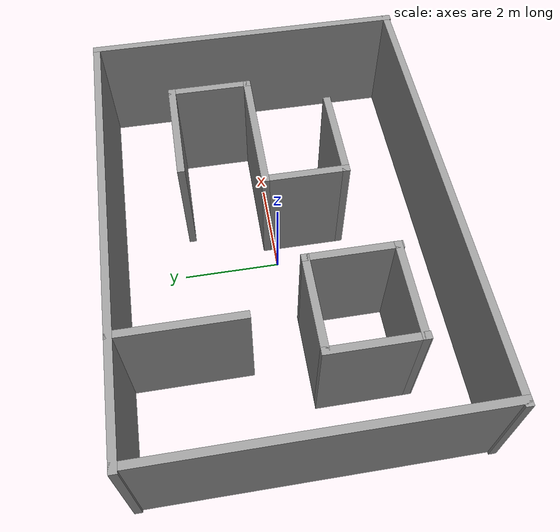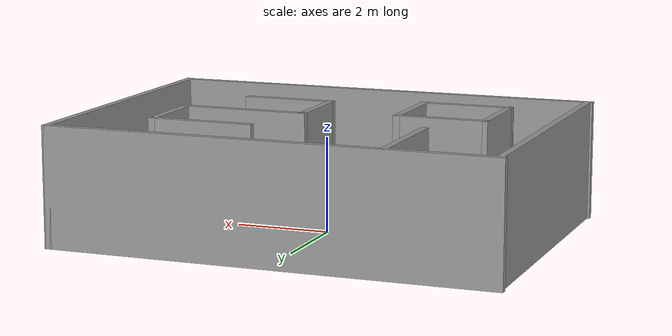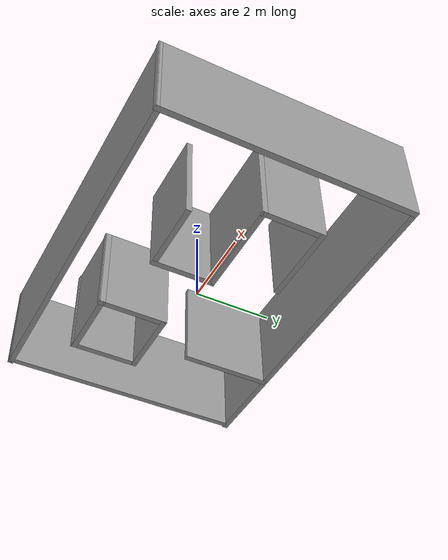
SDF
<?xml version='1.0'?>
<sdf version='1.6'>
  <model name='my_building'>
    <link name='Wall_0'>
      <pose frame=''>-0.0133 3.30088 0 0 -0 0</pose>
      <self_collide>0</self_collide>
      <enable_wind>0</enable_wind>
      <kinematic>0</kinematic>
      <visual name='Wall_0_Visual'>
        <pose frame=''>0 0 1.25 0 -0 0</pose>
        <geometry>
          <box>
            <size>9.43601 0.15 2.5</size>
          </box>
        </geometry>
        <material>
          <script>
            <uri>file://media/materials/scripts/gazebo.material</uri>
            <name>Gazebo/Grey</name>
          </script>
          <ambient>1 1 1 1</ambient>
          <shader type='pixel'/>
        </material>
        <meta>
          <layer>0</layer>
        </meta>
        <transparency>0</transparency>
        <cast_shadows>1</cast_shadows>
      </visual>
      <collision name='Wall_0_Collision'>
        <laser_retro>0</laser_retro>
        <max_contacts>10</max_contacts>
        <pose frame=''>0 0 1.25 0 -0 0</pose>
        <geometry>
          <box>
            <size>9.43601 0.15 2.5</size>
          </box>
        </geometry>
        <surface>
          <friction>
            <ode>
              <mu>1</mu>
              <mu2>1</mu2>
              <fdir1>0 0 0</fdir1>
              <slip1>0</slip1>
              <slip2>0</slip2>
            </ode>
            <torsional>
              <coefficient>1</coefficient>
              <patch_radius>0</patch_radius>
              <surface_radius>0</surface_radius>
              <use_patch_radius>1</use_patch_radius>
              <ode>
                <slip>0</slip>
              </ode>
            </torsional>
          </friction>
          <bounce>
            <restitution_coefficient>0</restitution_coefficient>
            <threshold>1e+06</threshold>
          </bounce>
          <contact>
            <collide_without_contact>0</collide_without_contact>
            <collide_without_contact_bitmask>1</collide_without_contact_bitmask>
            <collide_bitmask>1</collide_bitmask>
            <ode>
              <soft_cfm>0</soft_cfm>
              <soft_erp>0.2</soft_erp>
              <kp>1e+13</kp>
              <kd>1</kd>
              <max_vel>0.01</max_vel>
              <min_depth>0</min_depth>
            </ode>
            <bullet>
              <split_impulse>1</split_impulse>
              <split_impulse_penetration_threshold>-0.01</split_impulse_penetration_threshold>
              <soft_cfm>0</soft_cfm>
              <soft_erp>0.2</soft_erp>
              <kp>1e+13</kp>
              <kd>1</kd>
            </bullet>
          </contact>
        </surface>
      </collision>
    </link>
    <link name='Wall_1'>
      <pose frame=''>4.65631 9.3e-05 0 0 0 -1.5708</pose>
      <self_collide>0</self_collide>
      <enable_wind>0</enable_wind>
      <kinematic>0</kinematic>
      <visual name='Wall_1_Visual'>
        <pose frame=''>0 0 1.25 0 -0 0</pose>
        <geometry>
          <box>
            <size>6.75157 0.15 2.5</size>
          </box>
        </geometry>
        <material>
          <script>
            <uri>file://media/materials/scripts/gazebo.material</uri>
            <name>Gazebo/Grey</name>
          </script>
          <ambient>1 1 1 1</ambient>
          <shader type='pixel'/>
        </material>
        <meta>
          <layer>0</layer>
        </meta>
        <transparency>0</transparency>
        <cast_shadows>1</cast_shadows>
      </visual>
      <collision name='Wall_1_Collision'>
        <laser_retro>0</laser_retro>
        <max_contacts>10</max_contacts>
        <pose frame=''>0 0 1.25 0 -0 0</pose>
        <geometry>
          <box>
            <size>6.75157 0.15 2.5</size>
          </box>
        </geometry>
        <surface>
          <friction>
            <ode>
              <mu>1</mu>
              <mu2>1</mu2>
              <fdir1>0 0 0</fdir1>
              <slip1>0</slip1>
              <slip2>0</slip2>
            </ode>
            <torsional>
              <coefficient>1</coefficient>
              <patch_radius>0</patch_radius>
              <surface_radius>0</surface_radius>
              <use_patch_radius>1</use_patch_radius>
              <ode>
                <slip>0</slip>
              </ode>
            </torsional>
          </friction>
          <bounce>
            <restitution_coefficient>0</restitution_coefficient>
            <threshold>1e+06</threshold>
          </bounce>
          <contact>
            <collide_without_contact>0</collide_without_contact>
            <collide_without_contact_bitmask>1</collide_without_contact_bitmask>
            <collide_bitmask>1</collide_bitmask>
            <ode>
              <soft_cfm>0</soft_cfm>
              <soft_erp>0.2</soft_erp>
              <kp>1e+13</kp>
              <kd>1</kd>
              <max_vel>0.01</max_vel>
              <min_depth>0</min_depth>
            </ode>
            <bullet>
              <split_impulse>1</split_impulse>
              <split_impulse_penetration_threshold>-0.01</split_impulse_penetration_threshold>
              <soft_cfm>0</soft_cfm>
              <soft_erp>0.2</soft_erp>
              <kp>1e+13</kp>
              <kd>1</kd>
            </bullet>
          </contact>
        </surface>
      </collision>
    </link>
    <link name='Wall_10'>
      <pose frame=''>3.08812 0.963122 0 0 0 -1.5708</pose>
      <self_collide>0</self_collide>
      <enable_wind>0</enable_wind>
      <kinematic>0</kinematic>
      <visual name='Wall_10_Visual'>
        <pose frame=''>0 0 1.25 0 -0 0</pose>
        <geometry>
          <box>
            <size>1.75 0.15 2.5</size>
          </box>
        </geometry>
        <material>
          <script>
            <uri>file://media/materials/scripts/gazebo.material</uri>
            <name>Gazebo/Grey</name>
          </script>
          <ambient>1 1 1 1</ambient>
          <shader type='pixel'/>
        </material>
        <meta>
          <layer>0</layer>
        </meta>
        <transparency>0</transparency>
        <cast_shadows>1</cast_shadows>
      </visual>
      <collision name='Wall_10_Collision'>
        <laser_retro>0</laser_retro>
        <max_contacts>10</max_contacts>
        <pose frame=''>0 0 1.25 0 -0 0</pose>
        <geometry>
          <box>
            <size>1.75 0.15 2.5</size>
          </box>
        </geometry>
        <surface>
          <friction>
            <ode>
              <mu>1</mu>
              <mu2>1</mu2>
              <fdir1>0 0 0</fdir1>
              <slip1>0</slip1>
              <slip2>0</slip2>
            </ode>
            <torsional>
              <coefficient>1</coefficient>
              <patch_radius>0</patch_radius>
              <surface_radius>0</surface_radius>
              <use_patch_radius>1</use_patch_radius>
              <ode>
                <slip>0</slip>
              </ode>
            </torsional>
          </friction>
          <bounce>
            <restitution_coefficient>0</restitution_coefficient>
            <threshold>1e+06</threshold>
          </bounce>
          <contact>
            <collide_without_contact>0</collide_without_contact>
            <collide_without_contact_bitmask>1</collide_without_contact_bitmask>
            <collide_bitmask>1</collide_bitmask>
            <ode>
              <soft_cfm>0</soft_cfm>
              <soft_erp>0.2</soft_erp>
              <kp>1e+13</kp>
              <kd>1</kd>
              <max_vel>0.01</max_vel>
              <min_depth>0</min_depth>
            </ode>
            <bullet>
              <split_impulse>1</split_impulse>
              <split_impulse_penetration_threshold>-0.01</split_impulse_penetration_threshold>
              <soft_cfm>0</soft_cfm>
              <soft_erp>0.2</soft_erp>
              <kp>1e+13</kp>
              <kd>1</kd>
            </bullet>
          </contact>
        </surface>
      </collision>
    </link>
    <link name='Wall_11'>
      <pose frame=''>1.78812 0.163122 0 0 -0 3.14159</pose>
      <self_collide>0</self_collide>
      <enable_wind>0</enable_wind>
      <kinematic>0</kinematic>
      <visual name='Wall_11_Visual'>
        <pose frame=''>0 0 1.25 0 -0 0</pose>
        <geometry>
          <box>
            <size>2.75 0.15 2.5</size>
          </box>
        </geometry>
        <material>
          <script>
            <uri>file://media/materials/scripts/gazebo.material</uri>
            <name>Gazebo/Grey</name>
          </script>
          <ambient>1 1 1 1</ambient>
          <shader type='pixel'/>
        </material>
        <meta>
          <layer>0</layer>
        </meta>
        <transparency>0</transparency>
        <cast_shadows>1</cast_shadows>
      </visual>
      <collision name='Wall_11_Collision'>
        <laser_retro>0</laser_retro>
        <max_contacts>10</max_contacts>
        <pose frame=''>0 0 1.25 0 -0 0</pose>
        <geometry>
          <box>
            <size>2.75 0.15 2.5</size>
          </box>
        </geometry>
        <surface>
          <friction>
            <ode>
              <mu>1</mu>
              <mu2>1</mu2>
              <fdir1>0 0 0</fdir1>
              <slip1>0</slip1>
              <slip2>0</slip2>
            </ode>
            <torsional>
              <coefficient>1</coefficient>
              <patch_radius>0</patch_radius>
              <surface_radius>0</surface_radius>
              <use_patch_radius>1</use_patch_radius>
              <ode>
                <slip>0</slip>
              </ode>
            </torsional>
          </friction>
          <bounce>
            <restitution_coefficient>0</restitution_coefficient>
            <threshold>1e+06</threshold>
          </bounce>
          <contact>
            <collide_without_contact>0</collide_without_contact>
            <collide_without_contact_bitmask>1</collide_without_contact_bitmask>
            <collide_bitmask>1</collide_bitmask>
            <ode>
              <soft_cfm>0</soft_cfm>
              <soft_erp>0.2</soft_erp>
              <kp>1e+13</kp>
              <kd>1</kd>
              <max_vel>0.01</max_vel>
              <min_depth>0</min_depth>
            </ode>
            <bullet>
              <split_impulse>1</split_impulse>
              <split_impulse_penetration_threshold>-0.01</split_impulse_penetration_threshold>
              <soft_cfm>0</soft_cfm>
              <soft_erp>0.2</soft_erp>
              <kp>1e+13</kp>
              <kd>1</kd>
            </bullet>
          </contact>
        </surface>
      </collision>
    </link>
    <link name='Wall_12'>
      <pose frame=''>0.488124 -0.636878 0 0 0 -1.5708</pose>
      <self_collide>0</self_collide>
      <enable_wind>0</enable_wind>
      <kinematic>0</kinematic>
      <visual name='Wall_12_Visual'>
        <pose frame=''>0 0 1.25 0 -0 0</pose>
        <geometry>
          <box>
            <size>1.75 0.15 2.5</size>
          </box>
        </geometry>
        <material>
          <script>
            <uri>file://media/materials/scripts/gazebo.material</uri>
            <name>Gazebo/Grey</name>
          </script>
          <ambient>1 1 1 1</ambient>
          <shader type='pixel'/>
        </material>
        <meta>
          <layer>0</layer>
        </meta>
        <transparency>0</transparency>
        <cast_shadows>1</cast_shadows>
      </visual>
      <collision name='Wall_12_Collision'>
        <laser_retro>0</laser_retro>
        <max_contacts>10</max_contacts>
        <pose frame=''>0 0 1.25 0 -0 0</pose>
        <geometry>
          <box>
            <size>1.75 0.15 2.5</size>
          </box>
        </geometry>
        <surface>
          <friction>
            <ode>
              <mu>1</mu>
              <mu2>1</mu2>
              <fdir1>0 0 0</fdir1>
              <slip1>0</slip1>
              <slip2>0</slip2>
            </ode>
            <torsional>
              <coefficient>1</coefficient>
              <patch_radius>0</patch_radius>
              <surface_radius>0</surface_radius>
              <use_patch_radius>1</use_patch_radius>
              <ode>
                <slip>0</slip>
              </ode>
            </torsional>
          </friction>
          <bounce>
            <restitution_coefficient>0</restitution_coefficient>
            <threshold>1e+06</threshold>
          </bounce>
          <contact>
            <collide_without_contact>0</collide_without_contact>
            <collide_without_contact_bitmask>1</collide_without_contact_bitmask>
            <collide_bitmask>1</collide_bitmask>
            <ode>
              <soft_cfm>0</soft_cfm>
              <soft_erp>0.2</soft_erp>
              <kp>1e+13</kp>
              <kd>1</kd>
              <max_vel>0.01</max_vel>
              <min_depth>0</min_depth>
            </ode>
            <bullet>
              <split_impulse>1</split_impulse>
              <split_impulse_penetration_threshold>-0.01</split_impulse_penetration_threshold>
              <soft_cfm>0</soft_cfm>
              <soft_erp>0.2</soft_erp>
              <kp>1e+13</kp>
              <kd>1</kd>
            </bullet>
          </contact>
        </surface>
      </collision>
    </link>
    <link name='Wall_13'>
      <pose frame=''>1.41312 -1.43688 0 0 -0 0</pose>
      <self_collide>0</self_collide>
      <enable_wind>0</enable_wind>
      <kinematic>0</kinematic>
      <visual name='Wall_13_Visual'>
        <pose frame=''>0 0 1.25 0 -0 0</pose>
        <geometry>
          <box>
            <size>2 0.15 2.5</size>
          </box>
        </geometry>
        <material>
          <script>
            <uri>file://media/materials/scripts/gazebo.material</uri>
            <name>Gazebo/Grey</name>
          </script>
          <ambient>1 1 1 1</ambient>
          <shader type='pixel'/>
        </material>
        <meta>
          <layer>0</layer>
        </meta>
        <transparency>0</transparency>
        <cast_shadows>1</cast_shadows>
      </visual>
      <collision name='Wall_13_Collision'>
        <laser_retro>0</laser_retro>
        <max_contacts>10</max_contacts>
        <pose frame=''>0 0 1.25 0 -0 0</pose>
        <geometry>
          <box>
            <size>2 0.15 2.5</size>
          </box>
        </geometry>
        <surface>
          <friction>
            <ode>
              <mu>1</mu>
              <mu2>1</mu2>
              <fdir1>0 0 0</fdir1>
              <slip1>0</slip1>
              <slip2>0</slip2>
            </ode>
            <torsional>
              <coefficient>1</coefficient>
              <patch_radius>0</patch_radius>
              <surface_radius>0</surface_radius>
              <use_patch_radius>1</use_patch_radius>
              <ode>
                <slip>0</slip>
              </ode>
            </torsional>
          </friction>
          <bounce>
            <restitution_coefficient>0</restitution_coefficient>
            <threshold>1e+06</threshold>
          </bounce>
          <contact>
            <collide_without_contact>0</collide_without_contact>
            <collide_without_contact_bitmask>1</collide_without_contact_bitmask>
            <collide_bitmask>1</collide_bitmask>
            <ode>
              <soft_cfm>0</soft_cfm>
              <soft_erp>0.2</soft_erp>
              <kp>1e+13</kp>
              <kd>1</kd>
              <max_vel>0.01</max_vel>
              <min_depth>0</min_depth>
            </ode>
            <bullet>
              <split_impulse>1</split_impulse>
              <split_impulse_penetration_threshold>-0.01</split_impulse_penetration_threshold>
              <soft_cfm>0</soft_cfm>
              <soft_erp>0.2</soft_erp>
              <kp>1e+13</kp>
              <kd>1</kd>
            </bullet>
          </contact>
        </surface>
      </collision>
    </link>
    <link name='Wall_15'>
      <pose frame=''>-2.33498 -0.272372 0 0 -0 0</pose>
      <self_collide>0</self_collide>
      <enable_wind>0</enable_wind>
      <kinematic>0</kinematic>
      <visual name='Wall_15_Visual'>
        <pose frame=''>0 0 1.25 0 -0 0</pose>
        <geometry>
          <box>
            <size>2 0.15 2.5</size>
          </box>
        </geometry>
        <material>
          <script>
            <uri>file://media/materials/scripts/gazebo.material</uri>
            <name>Gazebo/Grey</name>
          </script>
          <ambient>1 1 1 1</ambient>
          <shader type='pixel'/>
        </material>
        <meta>
          <layer>0</layer>
        </meta>
        <transparency>0</transparency>
        <cast_shadows>1</cast_shadows>
      </visual>
      <collision name='Wall_15_Collision'>
        <laser_retro>0</laser_retro>
        <max_contacts>10</max_contacts>
        <pose frame=''>0 0 1.25 0 -0 0</pose>
        <geometry>
          <box>
            <size>2 0.15 2.5</size>
          </box>
        </geometry>
        <surface>
          <friction>
            <ode>
              <mu>1</mu>
              <mu2>1</mu2>
              <fdir1>0 0 0</fdir1>
              <slip1>0</slip1>
              <slip2>0</slip2>
            </ode>
            <torsional>
              <coefficient>1</coefficient>
              <patch_radius>0</patch_radius>
              <surface_radius>0</surface_radius>
              <use_patch_radius>1</use_patch_radius>
              <ode>
                <slip>0</slip>
              </ode>
            </torsional>
          </friction>
          <bounce>
            <restitution_coefficient>0</restitution_coefficient>
            <threshold>1e+06</threshold>
          </bounce>
          <contact>
            <collide_without_contact>0</collide_without_contact>
            <collide_without_contact_bitmask>1</collide_without_contact_bitmask>
            <collide_bitmask>1</collide_bitmask>
            <ode>
              <soft_cfm>0</soft_cfm>
              <soft_erp>0.2</soft_erp>
              <kp>1e+13</kp>
              <kd>1</kd>
              <max_vel>0.01</max_vel>
              <min_depth>0</min_depth>
            </ode>
            <bullet>
              <split_impulse>1</split_impulse>
              <split_impulse_penetration_threshold>-0.01</split_impulse_penetration_threshold>
              <soft_cfm>0</soft_cfm>
              <soft_erp>0.2</soft_erp>
              <kp>1e+13</kp>
              <kd>1</kd>
            </bullet>
          </contact>
        </surface>
      </collision>
    </link>
    <link name='Wall_16'>
      <pose frame=''>-1.40998 -1.15111 0 0 0 -1.5708</pose>
      <self_collide>0</self_collide>
      <enable_wind>0</enable_wind>
      <kinematic>0</kinematic>
      <visual name='Wall_16_Visual'>
        <pose frame=''>0 0 1.25 0 -0 0</pose>
        <geometry>
          <box>
            <size>1.90748 0.15 2.5</size>
          </box>
        </geometry>
        <material>
          <script>
            <uri>file://media/materials/scripts/gazebo.material</uri>
            <name>Gazebo/Grey</name>
          </script>
          <ambient>1 1 1 1</ambient>
          <shader type='pixel'/>
        </material>
        <meta>
          <layer>0</layer>
        </meta>
        <transparency>0</transparency>
        <cast_shadows>1</cast_shadows>
      </visual>
      <collision name='Wall_16_Collision'>
        <laser_retro>0</laser_retro>
        <max_contacts>10</max_contacts>
        <pose frame=''>0 0 1.25 0 -0 0</pose>
        <geometry>
          <box>
            <size>1.90748 0.15 2.5</size>
          </box>
        </geometry>
        <surface>
          <friction>
            <ode>
              <mu>1</mu>
              <mu2>1</mu2>
              <fdir1>0 0 0</fdir1>
              <slip1>0</slip1>
              <slip2>0</slip2>
            </ode>
            <torsional>
              <coefficient>1</coefficient>
              <patch_radius>0</patch_radius>
              <surface_radius>0</surface_radius>
              <use_patch_radius>1</use_patch_radius>
              <ode>
                <slip>0</slip>
              </ode>
            </torsional>
          </friction>
          <bounce>
            <restitution_coefficient>0</restitution_coefficient>
            <threshold>1e+06</threshold>
          </bounce>
          <contact>
            <collide_without_contact>0</collide_without_contact>
            <collide_without_contact_bitmask>1</collide_without_contact_bitmask>
            <collide_bitmask>1</collide_bitmask>
            <ode>
              <soft_cfm>0</soft_cfm>
              <soft_erp>0.2</soft_erp>
              <kp>1e+13</kp>
              <kd>1</kd>
              <max_vel>0.01</max_vel>
              <min_depth>0</min_depth>
            </ode>
            <bullet>
              <split_impulse>1</split_impulse>
              <split_impulse_penetration_threshold>-0.01</split_impulse_penetration_threshold>
              <soft_cfm>0</soft_cfm>
              <soft_erp>0.2</soft_erp>
              <kp>1e+13</kp>
              <kd>1</kd>
            </bullet>
          </contact>
        </surface>
      </collision>
    </link>
    <link name='Wall_17'>
      <pose frame=''>-2.33498 -2.00672 0 0 -0 3.14159</pose>
      <self_collide>0</self_collide>
      <enable_wind>0</enable_wind>
      <kinematic>0</kinematic>
      <visual name='Wall_17_Visual'>
        <pose frame=''>0 0 1.25 0 -0 0</pose>
        <geometry>
          <box>
            <size>2 0.15 2.5</size>
          </box>
        </geometry>
        <material>
          <script>
            <uri>file://media/materials/scripts/gazebo.material</uri>
            <name>Gazebo/Grey</name>
          </script>
          <ambient>1 1 1 1</ambient>
          <shader type='pixel'/>
        </material>
        <meta>
          <layer>0</layer>
        </meta>
        <transparency>0</transparency>
        <cast_shadows>1</cast_shadows>
      </visual>
      <collision name='Wall_17_Collision'>
        <laser_retro>0</laser_retro>
        <max_contacts>10</max_contacts>
        <pose frame=''>0 0 1.25 0 -0 0</pose>
        <geometry>
          <box>
            <size>2 0.15 2.5</size>
          </box>
        </geometry>
        <surface>
          <friction>
            <ode>
              <mu>1</mu>
              <mu2>1</mu2>
              <fdir1>0 0 0</fdir1>
              <slip1>0</slip1>
              <slip2>0</slip2>
            </ode>
            <torsional>
              <coefficient>1</coefficient>
              <patch_radius>0</patch_radius>
              <surface_radius>0</surface_radius>
              <use_patch_radius>1</use_patch_radius>
              <ode>
                <slip>0</slip>
              </ode>
            </torsional>
          </friction>
          <bounce>
            <restitution_coefficient>0</restitution_coefficient>
            <threshold>1e+06</threshold>
          </bounce>
          <contact>
            <collide_without_contact>0</collide_without_contact>
            <collide_without_contact_bitmask>1</collide_without_contact_bitmask>
            <collide_bitmask>1</collide_bitmask>
            <ode>
              <soft_cfm>0</soft_cfm>
              <soft_erp>0.2</soft_erp>
              <kp>1e+13</kp>
              <kd>1</kd>
              <max_vel>0.01</max_vel>
              <min_depth>0</min_depth>
            </ode>
            <bullet>
              <split_impulse>1</split_impulse>
              <split_impulse_penetration_threshold>-0.01</split_impulse_penetration_threshold>
              <soft_cfm>0</soft_cfm>
              <soft_erp>0.2</soft_erp>
              <kp>1e+13</kp>
              <kd>1</kd>
            </bullet>
          </contact>
        </surface>
      </collision>
    </link>
    <link name='Wall_18'>
      <pose frame=''>-3.25998 -1.15111 0 0 -0 1.5708</pose>
      <self_collide>0</self_collide>
      <enable_wind>0</enable_wind>
      <kinematic>0</kinematic>
      <visual name='Wall_18_Visual'>
        <pose frame=''>0 0 1.25 0 -0 0</pose>
        <geometry>
          <box>
            <size>1.90748 0.15 2.5</size>
          </box>
        </geometry>
        <material>
          <script>
            <uri>file://media/materials/scripts/gazebo.material</uri>
            <name>Gazebo/Grey</name>
          </script>
          <ambient>1 1 1 1</ambient>
          <shader type='pixel'/>
        </material>
        <meta>
          <layer>0</layer>
        </meta>
        <transparency>0</transparency>
        <cast_shadows>1</cast_shadows>
      </visual>
      <collision name='Wall_18_Collision'>
        <laser_retro>0</laser_retro>
        <max_contacts>10</max_contacts>
        <pose frame=''>0 0 1.25 0 -0 0</pose>
        <geometry>
          <box>
            <size>1.90748 0.15 2.5</size>
          </box>
        </geometry>
        <surface>
          <friction>
            <ode>
              <mu>1</mu>
              <mu2>1</mu2>
              <fdir1>0 0 0</fdir1>
              <slip1>0</slip1>
              <slip2>0</slip2>
            </ode>
            <torsional>
              <coefficient>1</coefficient>
              <patch_radius>0</patch_radius>
              <surface_radius>0</surface_radius>
              <use_patch_radius>1</use_patch_radius>
              <ode>
                <slip>0</slip>
              </ode>
            </torsional>
          </friction>
          <bounce>
            <restitution_coefficient>0</restitution_coefficient>
            <threshold>1e+06</threshold>
          </bounce>
          <contact>
            <collide_without_contact>0</collide_without_contact>
            <collide_without_contact_bitmask>1</collide_without_contact_bitmask>
            <collide_bitmask>1</collide_bitmask>
            <ode>
              <soft_cfm>0</soft_cfm>
              <soft_erp>0.2</soft_erp>
              <kp>1e+13</kp>
              <kd>1</kd>
              <max_vel>0.01</max_vel>
              <min_depth>0</min_depth>
            </ode>
            <bullet>
              <split_impulse>1</split_impulse>
              <split_impulse_penetration_threshold>-0.01</split_impulse_penetration_threshold>
              <soft_cfm>0</soft_cfm>
              <soft_erp>0.2</soft_erp>
              <kp>1e+13</kp>
              <kd>1</kd>
            </bullet>
          </contact>
        </surface>
      </collision>
    </link>
    <link name='Wall_2'>
      <pose frame=''>0 -3.28913 0 0 0 -3.13911</pose>
      <self_collide>0</self_collide>
      <enable_wind>0</enable_wind>
      <kinematic>0</kinematic>
      <visual name='Wall_2_Visual'>
        <pose frame=''>0 0 1.25 0 -0 0</pose>
        <geometry>
          <box>
            <size>9.46264 0.15 2.5</size>
          </box>
        </geometry>
        <material>
          <script>
            <uri>file://media/materials/scripts/gazebo.material</uri>
            <name>Gazebo/Grey</name>
          </script>
          <ambient>1 1 1 1</ambient>
          <shader type='pixel'/>
        </material>
        <meta>
          <layer>0</layer>
        </meta>
        <transparency>0</transparency>
        <cast_shadows>1</cast_shadows>
      </visual>
      <collision name='Wall_2_Collision'>
        <laser_retro>0</laser_retro>
        <max_contacts>10</max_contacts>
        <pose frame=''>0 0 1.25 0 -0 0</pose>
        <geometry>
          <box>
            <size>9.46264 0.15 2.5</size>
          </box>
        </geometry>
        <surface>
          <friction>
            <ode>
              <mu>1</mu>
              <mu2>1</mu2>
              <fdir1>0 0 0</fdir1>
              <slip1>0</slip1>
              <slip2>0</slip2>
            </ode>
            <torsional>
              <coefficient>1</coefficient>
              <patch_radius>0</patch_radius>
              <surface_radius>0</surface_radius>
              <use_patch_radius>1</use_patch_radius>
              <ode>
                <slip>0</slip>
              </ode>
            </torsional>
          </friction>
          <bounce>
            <restitution_coefficient>0</restitution_coefficient>
            <threshold>1e+06</threshold>
          </bounce>
          <contact>
            <collide_without_contact>0</collide_without_contact>
            <collide_without_contact_bitmask>1</collide_without_contact_bitmask>
            <collide_bitmask>1</collide_bitmask>
            <ode>
              <soft_cfm>0</soft_cfm>
              <soft_erp>0.2</soft_erp>
              <kp>1e+13</kp>
              <kd>1</kd>
              <max_vel>0.01</max_vel>
              <min_depth>0</min_depth>
            </ode>
            <bullet>
              <split_impulse>1</split_impulse>
              <split_impulse_penetration_threshold>-0.01</split_impulse_penetration_threshold>
              <soft_cfm>0</soft_cfm>
              <soft_erp>0.2</soft_erp>
              <kp>1e+13</kp>
              <kd>1</kd>
            </bullet>
          </contact>
        </surface>
      </collision>
    </link>
    <link name='Wall_3'>
      <pose frame=''>-4.61005 9.3e-05 0 0 -0 1.5708</pose>
      <self_collide>0</self_collide>
      <enable_wind>0</enable_wind>
      <kinematic>0</kinematic>
      <visual name='Wall_3_Visual'>
        <pose frame=''>0 0 1.25 0 -0 0</pose>
        <geometry>
          <box>
            <size>6.75157 0.15 2.5</size>
          </box>
        </geometry>
        <material>
          <script>
            <uri>file://media/materials/scripts/gazebo.material</uri>
            <name>Gazebo/Grey</name>
          </script>
          <ambient>1 1 1 1</ambient>
          <shader type='pixel'/>
        </material>
        <meta>
          <layer>0</layer>
        </meta>
        <transparency>0</transparency>
        <cast_shadows>1</cast_shadows>
      </visual>
      <collision name='Wall_3_Collision'>
        <laser_retro>0</laser_retro>
        <max_contacts>10</max_contacts>
        <pose frame=''>0 0 1.25 0 -0 0</pose>
        <geometry>
          <box>
            <size>6.75157 0.15 2.5</size>
          </box>
        </geometry>
        <surface>
          <friction>
            <ode>
              <mu>1</mu>
              <mu2>1</mu2>
              <fdir1>0 0 0</fdir1>
              <slip1>0</slip1>
              <slip2>0</slip2>
            </ode>
            <torsional>
              <coefficient>1</coefficient>
              <patch_radius>0</patch_radius>
              <surface_radius>0</surface_radius>
              <use_patch_radius>1</use_patch_radius>
              <ode>
                <slip>0</slip>
              </ode>
            </torsional>
          </friction>
          <bounce>
            <restitution_coefficient>0</restitution_coefficient>
            <threshold>1e+06</threshold>
          </bounce>
          <contact>
            <collide_without_contact>0</collide_without_contact>
            <collide_without_contact_bitmask>1</collide_without_contact_bitmask>
            <collide_bitmask>1</collide_bitmask>
            <ode>
              <soft_cfm>0</soft_cfm>
              <soft_erp>0.2</soft_erp>
              <kp>1e+13</kp>
              <kd>1</kd>
              <max_vel>0.01</max_vel>
              <min_depth>0</min_depth>
            </ode>
            <bullet>
              <split_impulse>1</split_impulse>
              <split_impulse_penetration_threshold>-0.01</split_impulse_penetration_threshold>
              <soft_cfm>0</soft_cfm>
              <soft_erp>0.2</soft_erp>
              <kp>1e+13</kp>
              <kd>1</kd>
            </bullet>
          </contact>
        </surface>
      </collision>
    </link>
    <link name='Wall_6'>
      <pose frame=''>-2.38102 2.11474 0 0 0 -1.5708</pose>
      <self_collide>0</self_collide>
      <enable_wind>0</enable_wind>
      <kinematic>0</kinematic>
      <visual name='Wall_6_Visual'>
        <pose frame=''>0 0 1.25 0 -0 0</pose>
        <geometry>
          <box>
            <size>2.5 0.15 2.5</size>
          </box>
        </geometry>
        <material>
          <script>
            <uri>file://media/materials/scripts/gazebo.material</uri>
            <name>Gazebo/Grey</name>
          </script>
          <ambient>1 1 1 1</ambient>
          <shader type='pixel'/>
        </material>
        <meta>
          <layer>0</layer>
        </meta>
        <transparency>0</transparency>
        <cast_shadows>1</cast_shadows>
      </visual>
      <collision name='Wall_6_Collision'>
        <laser_retro>0</laser_retro>
        <max_contacts>10</max_contacts>
        <pose frame=''>0 0 1.25 0 -0 0</pose>
        <geometry>
          <box>
            <size>2.5 0.15 2.5</size>
          </box>
        </geometry>
        <surface>
          <friction>
            <ode>
              <mu>1</mu>
              <mu2>1</mu2>
              <fdir1>0 0 0</fdir1>
              <slip1>0</slip1>
              <slip2>0</slip2>
            </ode>
            <torsional>
              <coefficient>1</coefficient>
              <patch_radius>0</patch_radius>
              <surface_radius>0</surface_radius>
              <use_patch_radius>1</use_patch_radius>
              <ode>
                <slip>0</slip>
              </ode>
            </torsional>
          </friction>
          <bounce>
            <restitution_coefficient>0</restitution_coefficient>
            <threshold>1e+06</threshold>
          </bounce>
          <contact>
            <collide_without_contact>0</collide_without_contact>
            <collide_without_contact_bitmask>1</collide_without_contact_bitmask>
            <collide_bitmask>1</collide_bitmask>
            <ode>
              <soft_cfm>0</soft_cfm>
              <soft_erp>0.2</soft_erp>
              <kp>1e+13</kp>
              <kd>1</kd>
              <max_vel>0.01</max_vel>
              <min_depth>0</min_depth>
            </ode>
            <bullet>
              <split_impulse>1</split_impulse>
              <split_impulse_penetration_threshold>-0.01</split_impulse_penetration_threshold>
              <soft_cfm>0</soft_cfm>
              <soft_erp>0.2</soft_erp>
              <kp>1e+13</kp>
              <kd>1</kd>
            </bullet>
          </contact>
        </surface>
      </collision>
    </link>
    <link name='Wall_8'>
      <pose frame=''>2.03812 1.76312 0 0 -0 0</pose>
      <self_collide>0</self_collide>
      <enable_wind>0</enable_wind>
      <kinematic>0</kinematic>
      <visual name='Wall_8_Visual'>
        <pose frame=''>0 0 1.25 0 -0 0</pose>
        <geometry>
          <box>
            <size>2.25 0.15 2.5</size>
          </box>
        </geometry>
        <material>
          <script>
            <uri>file://media/materials/scripts/gazebo.material</uri>
            <name>Gazebo/Grey</name>
          </script>
          <ambient>1 1 1 1</ambient>
          <shader type='pixel'/>
        </material>
        <meta>
          <layer>0</layer>
        </meta>
        <transparency>0</transparency>
        <cast_shadows>1</cast_shadows>
      </visual>
      <collision name='Wall_8_Collision'>
        <laser_retro>0</laser_retro>
        <max_contacts>10</max_contacts>
        <pose frame=''>0 0 1.25 0 -0 0</pose>
        <geometry>
          <box>
            <size>2.25 0.15 2.5</size>
          </box>
        </geometry>
        <surface>
          <friction>
            <ode>
              <mu>1</mu>
              <mu2>1</mu2>
              <fdir1>0 0 0</fdir1>
              <slip1>0</slip1>
              <slip2>0</slip2>
            </ode>
            <torsional>
              <coefficient>1</coefficient>
              <patch_radius>0</patch_radius>
              <surface_radius>0</surface_radius>
              <use_patch_radius>1</use_patch_radius>
              <ode>
                <slip>0</slip>
              </ode>
            </torsional>
          </friction>
          <bounce>
            <restitution_coefficient>0</restitution_coefficient>
            <threshold>1e+06</threshold>
          </bounce>
          <contact>
            <collide_without_contact>0</collide_without_contact>
            <collide_without_contact_bitmask>1</collide_without_contact_bitmask>
            <collide_bitmask>1</collide_bitmask>
            <ode>
              <soft_cfm>0</soft_cfm>
              <soft_erp>0.2</soft_erp>
              <kp>1e+13</kp>
              <kd>1</kd>
              <max_vel>0.01</max_vel>
              <min_depth>0</min_depth>
            </ode>
            <bullet>
              <split_impulse>1</split_impulse>
              <split_impulse_penetration_threshold>-0.01</split_impulse_penetration_threshold>
              <soft_cfm>0</soft_cfm>
              <soft_erp>0.2</soft_erp>
              <kp>1e+13</kp>
              <kd>1</kd>
            </bullet>
          </contact>
        </surface>
      </collision>
    </link>
    <static>1</static>
    <allow_auto_disable>1</allow_auto_disable>
  </model>
</sdf>
